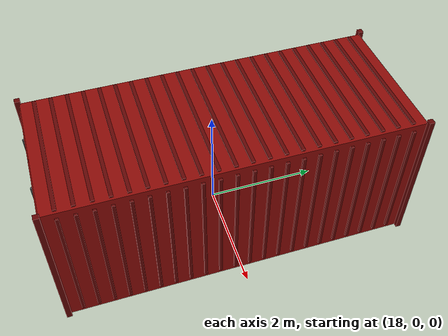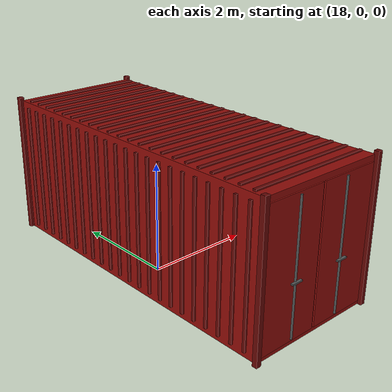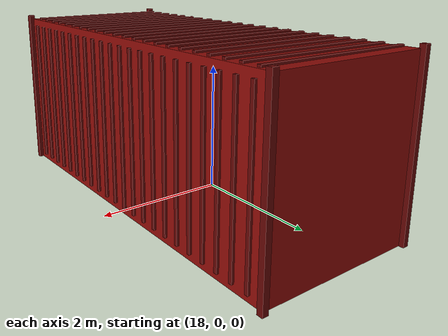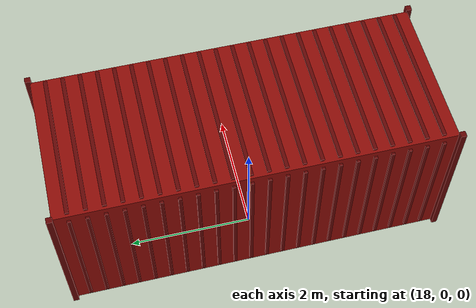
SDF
<sdf version="1.5">
 <world name="default">
  <include><uri>model://sun</uri></include>
  <model name="red_shipping_container">
   <static>true</static>
   <pose>18.5 0 0.003 0 0 1.570796</pose>
   <link name="structure">
    <visual name="body">
     <pose>0 0 1.2955 0 0 0</pose>
     <geometry><box><size>6.058 2.438 2.591</size></box></geometry>
     <material>
      <ambient>0.56 0.045 0.028 1</ambient>
      <diffuse>0.56 0.045 0.028 1</diffuse>
      <specular>0.04 0.04 0.04 1</specular>
     </material>
    </visual>
    <collision name="body_collision">
     <pose>0 0 1.2955 0 0 0</pose>
     <geometry><box><size>6.058 2.438 2.591</size></box></geometry>
     <surface><friction><ode><mu>1.0</mu><mu2>1.0</mu2></ode></friction></surface>
    </collision>
    <visual name="wall_rib_0_-1">
     <pose>-2.8 -1.237 1.2955 0 0 0</pose>
     <geometry><box><size>0.055 0.038 2.39</size></box></geometry>
     <material>
      <ambient>0.39 0.025 0.018 1</ambient>
      <diffuse>0.39 0.025 0.018 1</diffuse>
      <specular>0.04 0.04 0.04 1</specular>
     </material>
    </visual>
    <visual name="wall_rib_0_1">
     <pose>-2.8 1.237 1.2955 0 0 0</pose>
     <geometry><box><size>0.055 0.038 2.39</size></box></geometry>
     <material>
      <ambient>0.39 0.025 0.018 1</ambient>
      <diffuse>0.39 0.025 0.018 1</diffuse>
      <specular>0.04 0.04 0.04 1</specular>
     </material>
    </visual>
    <visual name="roof_rib_0">
     <pose>-2.8 0 2.606 0 0 0</pose>
     <geometry><box><size>0.06 2.35 0.03</size></box></geometry>
     <material>
      <ambient>0.39 0.025 0.018 1</ambient>
      <diffuse>0.39 0.025 0.018 1</diffuse>
      <specular>0.04 0.04 0.04 1</specular>
     </material>
    </visual>
    <visual name="wall_rib_1_-1">
     <pose>-2.533333 -1.237 1.2955 0 0 0</pose>
     <geometry><box><size>0.055 0.038 2.39</size></box></geometry>
     <material>
      <ambient>0.39 0.025 0.018 1</ambient>
      <diffuse>0.39 0.025 0.018 1</diffuse>
      <specular>0.04 0.04 0.04 1</specular>
     </material>
    </visual>
    <visual name="wall_rib_1_1">
     <pose>-2.533333 1.237 1.2955 0 0 0</pose>
     <geometry><box><size>0.055 0.038 2.39</size></box></geometry>
     <material>
      <ambient>0.39 0.025 0.018 1</ambient>
      <diffuse>0.39 0.025 0.018 1</diffuse>
      <specular>0.04 0.04 0.04 1</specular>
     </material>
    </visual>
    <visual name="roof_rib_1">
     <pose>-2.533333 0 2.606 0 0 0</pose>
     <geometry><box><size>0.06 2.35 0.03</size></box></geometry>
     <material>
      <ambient>0.39 0.025 0.018 1</ambient>
      <diffuse>0.39 0.025 0.018 1</diffuse>
      <specular>0.04 0.04 0.04 1</specular>
     </material>
    </visual>
    <visual name="wall_rib_2_-1">
     <pose>-2.266667 -1.237 1.2955 0 0 0</pose>
     <geometry><box><size>0.055 0.038 2.39</size></box></geometry>
     <material>
      <ambient>0.39 0.025 0.018 1</ambient>
      <diffuse>0.39 0.025 0.018 1</diffuse>
      <specular>0.04 0.04 0.04 1</specular>
     </material>
    </visual>
    <visual name="wall_rib_2_1">
     <pose>-2.266667 1.237 1.2955 0 0 0</pose>
     <geometry><box><size>0.055 0.038 2.39</size></box></geometry>
     <material>
      <ambient>0.39 0.025 0.018 1</ambient>
      <diffuse>0.39 0.025 0.018 1</diffuse>
      <specular>0.04 0.04 0.04 1</specular>
     </material>
    </visual>
    <visual name="roof_rib_2">
     <pose>-2.266667 0 2.606 0 0 0</pose>
     <geometry><box><size>0.06 2.35 0.03</size></box></geometry>
     <material>
      <ambient>0.39 0.025 0.018 1</ambient>
      <diffuse>0.39 0.025 0.018 1</diffuse>
      <specular>0.04 0.04 0.04 1</specular>
     </material>
    </visual>
    <visual name="wall_rib_3_-1">
     <pose>-2 -1.237 1.2955 0 0 0</pose>
     <geometry><box><size>0.055 0.038 2.39</size></box></geometry>
     <material>
      <ambient>0.39 0.025 0.018 1</ambient>
      <diffuse>0.39 0.025 0.018 1</diffuse>
      <specular>0.04 0.04 0.04 1</specular>
     </material>
    </visual>
    <visual name="wall_rib_3_1">
     <pose>-2 1.237 1.2955 0 0 0</pose>
     <geometry><box><size>0.055 0.038 2.39</size></box></geometry>
     <material>
      <ambient>0.39 0.025 0.018 1</ambient>
      <diffuse>0.39 0.025 0.018 1</diffuse>
      <specular>0.04 0.04 0.04 1</specular>
     </material>
    </visual>
    <visual name="roof_rib_3">
     <pose>-2 0 2.606 0 0 0</pose>
     <geometry><box><size>0.06 2.35 0.03</size></box></geometry>
     <material>
      <ambient>0.39 0.025 0.018 1</ambient>
      <diffuse>0.39 0.025 0.018 1</diffuse>
      <specular>0.04 0.04 0.04 1</specular>
     </material>
    </visual>
    <visual name="wall_rib_4_-1">
     <pose>-1.733333 -1.237 1.2955 0 0 0</pose>
     <geometry><box><size>0.055 0.038 2.39</size></box></geometry>
     <material>
      <ambient>0.39 0.025 0.018 1</ambient>
      <diffuse>0.39 0.025 0.018 1</diffuse>
      <specular>0.04 0.04 0.04 1</specular>
     </material>
    </visual>
    <visual name="wall_rib_4_1">
     <pose>-1.733333 1.237 1.2955 0 0 0</pose>
     <geometry><box><size>0.055 0.038 2.39</size></box></geometry>
     <material>
      <ambient>0.39 0.025 0.018 1</ambient>
      <diffuse>0.39 0.025 0.018 1</diffuse>
      <specular>0.04 0.04 0.04 1</specular>
     </material>
    </visual>
    <visual name="roof_rib_4">
     <pose>-1.733333 0 2.606 0 0 0</pose>
     <geometry><box><size>0.06 2.35 0.03</size></box></geometry>
     <material>
      <ambient>0.39 0.025 0.018 1</ambient>
      <diffuse>0.39 0.025 0.018 1</diffuse>
      <specular>0.04 0.04 0.04 1</specular>
     </material>
    </visual>
    <visual name="wall_rib_5_-1">
     <pose>-1.466667 -1.237 1.2955 0 0 0</pose>
     <geometry><box><size>0.055 0.038 2.39</size></box></geometry>
     <material>
      <ambient>0.39 0.025 0.018 1</ambient>
      <diffuse>0.39 0.025 0.018 1</diffuse>
      <specular>0.04 0.04 0.04 1</specular>
     </material>
    </visual>
    <visual name="wall_rib_5_1">
     <pose>-1.466667 1.237 1.2955 0 0 0</pose>
     <geometry><box><size>0.055 0.038 2.39</size></box></geometry>
     <material>
      <ambient>0.39 0.025 0.018 1</ambient>
      <diffuse>0.39 0.025 0.018 1</diffuse>
      <specular>0.04 0.04 0.04 1</specular>
     </material>
    </visual>
    <visual name="roof_rib_5">
     <pose>-1.466667 0 2.606 0 0 0</pose>
     <geometry><box><size>0.06 2.35 0.03</size></box></geometry>
     <material>
      <ambient>0.39 0.025 0.018 1</ambient>
      <diffuse>0.39 0.025 0.018 1</diffuse>
      <specular>0.04 0.04 0.04 1</specular>
     </material>
    </visual>
    <visual name="wall_rib_6_-1">
     <pose>-1.2 -1.237 1.2955 0 0 0</pose>
     <geometry><box><size>0.055 0.038 2.39</size></box></geometry>
     <material>
      <ambient>0.39 0.025 0.018 1</ambient>
      <diffuse>0.39 0.025 0.018 1</diffuse>
      <specular>0.04 0.04 0.04 1</specular>
     </material>
    </visual>
    <visual name="wall_rib_6_1">
     <pose>-1.2 1.237 1.2955 0 0 0</pose>
     <geometry><box><size>0.055 0.038 2.39</size></box></geometry>
     <material>
      <ambient>0.39 0.025 0.018 1</ambient>
      <diffuse>0.39 0.025 0.018 1</diffuse>
      <specular>0.04 0.04 0.04 1</specular>
     </material>
    </visual>
    <visual name="roof_rib_6">
     <pose>-1.2 0 2.606 0 0 0</pose>
     <geometry><box><size>0.06 2.35 0.03</size></box></geometry>
     <material>
      <ambient>0.39 0.025 0.018 1</ambient>
      <diffuse>0.39 0.025 0.018 1</diffuse>
      <specular>0.04 0.04 0.04 1</specular>
     </material>
    </visual>
    <visual name="wall_rib_7_-1">
     <pose>-0.9333333 -1.237 1.2955 0 0 0</pose>
     <geometry><box><size>0.055 0.038 2.39</size></box></geometry>
     <material>
      <ambient>0.39 0.025 0.018 1</ambient>
      <diffuse>0.39 0.025 0.018 1</diffuse>
      <specular>0.04 0.04 0.04 1</specular>
     </material>
    </visual>
    <visual name="wall_rib_7_1">
     <pose>-0.9333333 1.237 1.2955 0 0 0</pose>
     <geometry><box><size>0.055 0.038 2.39</size></box></geometry>
     <material>
      <ambient>0.39 0.025 0.018 1</ambient>
      <diffuse>0.39 0.025 0.018 1</diffuse>
      <specular>0.04 0.04 0.04 1</specular>
     </material>
    </visual>
    <visual name="roof_rib_7">
     <pose>-0.9333333 0 2.606 0 0 0</pose>
     <geometry><box><size>0.06 2.35 0.03</size></box></geometry>
     <material>
      <ambient>0.39 0.025 0.018 1</ambient>
      <diffuse>0.39 0.025 0.018 1</diffuse>
      <specular>0.04 0.04 0.04 1</specular>
     </material>
    </visual>
    <visual name="wall_rib_8_-1">
     <pose>-0.6666667 -1.237 1.2955 0 0 0</pose>
     <geometry><box><size>0.055 0.038 2.39</size></box></geometry>
     <material>
      <ambient>0.39 0.025 0.018 1</ambient>
      <diffuse>0.39 0.025 0.018 1</diffuse>
      <specular>0.04 0.04 0.04 1</specular>
     </material>
    </visual>
    <visual name="wall_rib_8_1">
     <pose>-0.6666667 1.237 1.2955 0 0 0</pose>
     <geometry><box><size>0.055 0.038 2.39</size></box></geometry>
     <material>
      <ambient>0.39 0.025 0.018 1</ambient>
      <diffuse>0.39 0.025 0.018 1</diffuse>
      <specular>0.04 0.04 0.04 1</specular>
     </material>
    </visual>
    <visual name="roof_rib_8">
     <pose>-0.6666667 0 2.606 0 0 0</pose>
     <geometry><box><size>0.06 2.35 0.03</size></box></geometry>
     <material>
      <ambient>0.39 0.025 0.018 1</ambient>
      <diffuse>0.39 0.025 0.018 1</diffuse>
      <specular>0.04 0.04 0.04 1</specular>
     </material>
    </visual>
    <visual name="wall_rib_9_-1">
     <pose>-0.4 -1.237 1.2955 0 0 0</pose>
     <geometry><box><size>0.055 0.038 2.39</size></box></geometry>
     <material>
      <ambient>0.39 0.025 0.018 1</ambient>
      <diffuse>0.39 0.025 0.018 1</diffuse>
      <specular>0.04 0.04 0.04 1</specular>
     </material>
    </visual>
    <visual name="wall_rib_9_1">
     <pose>-0.4 1.237 1.2955 0 0 0</pose>
     <geometry><box><size>0.055 0.038 2.39</size></box></geometry>
     <material>
      <ambient>0.39 0.025 0.018 1</ambient>
      <diffuse>0.39 0.025 0.018 1</diffuse>
      <specular>0.04 0.04 0.04 1</specular>
     </material>
    </visual>
    <visual name="roof_rib_9">
     <pose>-0.4 0 2.606 0 0 0</pose>
     <geometry><box><size>0.06 2.35 0.03</size></box></geometry>
     <material>
      <ambient>0.39 0.025 0.018 1</ambient>
      <diffuse>0.39 0.025 0.018 1</diffuse>
      <specular>0.04 0.04 0.04 1</specular>
     </material>
    </visual>
    <visual name="wall_rib_10_-1">
     <pose>-0.1333333 -1.237 1.2955 0 0 0</pose>
     <geometry><box><size>0.055 0.038 2.39</size></box></geometry>
     <material>
      <ambient>0.39 0.025 0.018 1</ambient>
      <diffuse>0.39 0.025 0.018 1</diffuse>
      <specular>0.04 0.04 0.04 1</specular>
     </material>
    </visual>
    <visual name="wall_rib_10_1">
     <pose>-0.1333333 1.237 1.2955 0 0 0</pose>
     <geometry><box><size>0.055 0.038 2.39</size></box></geometry>
     <material>
      <ambient>0.39 0.025 0.018 1</ambient>
      <diffuse>0.39 0.025 0.018 1</diffuse>
      <specular>0.04 0.04 0.04 1</specular>
     </material>
    </visual>
    <visual name="roof_rib_10">
     <pose>-0.1333333 0 2.606 0 0 0</pose>
     <geometry><box><size>0.06 2.35 0.03</size></box></geometry>
     <material>
      <ambient>0.39 0.025 0.018 1</ambient>
      <diffuse>0.39 0.025 0.018 1</diffuse>
      <specular>0.04 0.04 0.04 1</specular>
     </material>
    </visual>
    <visual name="wall_rib_11_-1">
     <pose>0.1333333 -1.237 1.2955 0 0 0</pose>
     <geometry><box><size>0.055 0.038 2.39</size></box></geometry>
     <material>
      <ambient>0.39 0.025 0.018 1</ambient>
      <diffuse>0.39 0.025 0.018 1</diffuse>
      <specular>0.04 0.04 0.04 1</specular>
     </material>
    </visual>
    <visual name="wall_rib_11_1">
     <pose>0.1333333 1.237 1.2955 0 0 0</pose>
     <geometry><box><size>0.055 0.038 2.39</size></box></geometry>
     <material>
      <ambient>0.39 0.025 0.018 1</ambient>
      <diffuse>0.39 0.025 0.018 1</diffuse>
      <specular>0.04 0.04 0.04 1</specular>
     </material>
    </visual>
    <visual name="roof_rib_11">
     <pose>0.1333333 0 2.606 0 0 0</pose>
     <geometry><box><size>0.06 2.35 0.03</size></box></geometry>
     <material>
      <ambient>0.39 0.025 0.018 1</ambient>
      <diffuse>0.39 0.025 0.018 1</diffuse>
      <specular>0.04 0.04 0.04 1</specular>
     </material>
    </visual>
    <visual name="wall_rib_12_-1">
     <pose>0.4 -1.237 1.2955 0 0 0</pose>
     <geometry><box><size>0.055 0.038 2.39</size></box></geometry>
     <material>
      <ambient>0.39 0.025 0.018 1</ambient>
      <diffuse>0.39 0.025 0.018 1</diffuse>
      <specular>0.04 0.04 0.04 1</specular>
     </material>
    </visual>
    <visual name="wall_rib_12_1">
     <pose>0.4 1.237 1.2955 0 0 0</pose>
     <geometry><box><size>0.055 0.038 2.39</size></box></geometry>
     <material>
      <ambient>0.39 0.025 0.018 1</ambient>
      <diffuse>0.39 0.025 0.018 1</diffuse>
      <specular>0.04 0.04 0.04 1</specular>
     </material>
    </visual>
    <visual name="roof_rib_12">
     <pose>0.4 0 2.606 0 0 0</pose>
     <geometry><box><size>0.06 2.35 0.03</size></box></geometry>
     <material>
      <ambient>0.39 0.025 0.018 1</ambient>
      <diffuse>0.39 0.025 0.018 1</diffuse>
      <specular>0.04 0.04 0.04 1</specular>
     </material>
    </visual>
    <visual name="wall_rib_13_-1">
     <pose>0.6666667 -1.237 1.2955 0 0 0</pose>
     <geometry><box><size>0.055 0.038 2.39</size></box></geometry>
     <material>
      <ambient>0.39 0.025 0.018 1</ambient>
      <diffuse>0.39 0.025 0.018 1</diffuse>
      <specular>0.04 0.04 0.04 1</specular>
     </material>
    </visual>
    <visual name="wall_rib_13_1">
     <pose>0.6666667 1.237 1.2955 0 0 0</pose>
     <geometry><box><size>0.055 0.038 2.39</size></box></geometry>
     <material>
      <ambient>0.39 0.025 0.018 1</ambient>
      <diffuse>0.39 0.025 0.018 1</diffuse>
      <specular>0.04 0.04 0.04 1</specular>
     </material>
    </visual>
    <visual name="roof_rib_13">
     <pose>0.6666667 0 2.606 0 0 0</pose>
     <geometry><box><size>0.06 2.35 0.03</size></box></geometry>
     <material>
      <ambient>0.39 0.025 0.018 1</ambient>
      <diffuse>0.39 0.025 0.018 1</diffuse>
      <specular>0.04 0.04 0.04 1</specular>
     </material>
    </visual>
    <visual name="wall_rib_14_-1">
     <pose>0.9333333 -1.237 1.2955 0 0 0</pose>
     <geometry><box><size>0.055 0.038 2.39</size></box></geometry>
     <material>
      <ambient>0.39 0.025 0.018 1</ambient>
      <diffuse>0.39 0.025 0.018 1</diffuse>
      <specular>0.04 0.04 0.04 1</specular>
     </material>
    </visual>
    <visual name="wall_rib_14_1">
     <pose>0.9333333 1.237 1.2955 0 0 0</pose>
     <geometry><box><size>0.055 0.038 2.39</size></box></geometry>
     <material>
      <ambient>0.39 0.025 0.018 1</ambient>
      <diffuse>0.39 0.025 0.018 1</diffuse>
      <specular>0.04 0.04 0.04 1</specular>
     </material>
    </visual>
    <visual name="roof_rib_14">
     <pose>0.9333333 0 2.606 0 0 0</pose>
     <geometry><box><size>0.06 2.35 0.03</size></box></geometry>
     <material>
      <ambient>0.39 0.025 0.018 1</ambient>
      <diffuse>0.39 0.025 0.018 1</diffuse>
      <specular>0.04 0.04 0.04 1</specular>
     </material>
    </visual>
    <visual name="wall_rib_15_-1">
     <pose>1.2 -1.237 1.2955 0 0 0</pose>
     <geometry><box><size>0.055 0.038 2.39</size></box></geometry>
     <material>
      <ambient>0.39 0.025 0.018 1</ambient>
      <diffuse>0.39 0.025 0.018 1</diffuse>
      <specular>0.04 0.04 0.04 1</specular>
     </material>
    </visual>
    <visual name="wall_rib_15_1">
     <pose>1.2 1.237 1.2955 0 0 0</pose>
     <geometry><box><size>0.055 0.038 2.39</size></box></geometry>
     <material>
      <ambient>0.39 0.025 0.018 1</ambient>
      <diffuse>0.39 0.025 0.018 1</diffuse>
      <specular>0.04 0.04 0.04 1</specular>
     </material>
    </visual>
    <visual name="roof_rib_15">
     <pose>1.2 0 2.606 0 0 0</pose>
     <geometry><box><size>0.06 2.35 0.03</size></box></geometry>
     <material>
      <ambient>0.39 0.025 0.018 1</ambient>
      <diffuse>0.39 0.025 0.018 1</diffuse>
      <specular>0.04 0.04 0.04 1</specular>
     </material>
    </visual>
    <visual name="wall_rib_16_-1">
     <pose>1.466667 -1.237 1.2955 0 0 0</pose>
     <geometry><box><size>0.055 0.038 2.39</size></box></geometry>
     <material>
      <ambient>0.39 0.025 0.018 1</ambient>
      <diffuse>0.39 0.025 0.018 1</diffuse>
      <specular>0.04 0.04 0.04 1</specular>
     </material>
    </visual>
    <visual name="wall_rib_16_1">
     <pose>1.466667 1.237 1.2955 0 0 0</pose>
     <geometry><box><size>0.055 0.038 2.39</size></box></geometry>
     <material>
      <ambient>0.39 0.025 0.018 1</ambient>
      <diffuse>0.39 0.025 0.018 1</diffuse>
      <specular>0.04 0.04 0.04 1</specular>
     </material>
    </visual>
    <visual name="roof_rib_16">
     <pose>1.466667 0 2.606 0 0 0</pose>
     <geometry><box><size>0.06 2.35 0.03</size></box></geometry>
     <material>
      <ambient>0.39 0.025 0.018 1</ambient>
      <diffuse>0.39 0.025 0.018 1</diffuse>
      <specular>0.04 0.04 0.04 1</specular>
     </material>
    </visual>
    <visual name="wall_rib_17_-1">
     <pose>1.733333 -1.237 1.2955 0 0 0</pose>
     <geometry><box><size>0.055 0.038 2.39</size></box></geometry>
     <material>
      <ambient>0.39 0.025 0.018 1</ambient>
      <diffuse>0.39 0.025 0.018 1</diffuse>
      <specular>0.04 0.04 0.04 1</specular>
     </material>
    </visual>
    <visual name="wall_rib_17_1">
     <pose>1.733333 1.237 1.2955 0 0 0</pose>
     <geometry><box><size>0.055 0.038 2.39</size></box></geometry>
     <material>
      <ambient>0.39 0.025 0.018 1</ambient>
      <diffuse>0.39 0.025 0.018 1</diffuse>
      <specular>0.04 0.04 0.04 1</specular>
     </material>
    </visual>
    <visual name="roof_rib_17">
     <pose>1.733333 0 2.606 0 0 0</pose>
     <geometry><box><size>0.06 2.35 0.03</size></box></geometry>
     <material>
      <ambient>0.39 0.025 0.018 1</ambient>
      <diffuse>0.39 0.025 0.018 1</diffuse>
      <specular>0.04 0.04 0.04 1</specular>
     </material>
    </visual>
    <visual name="wall_rib_18_-1">
     <pose>2 -1.237 1.2955 0 0 0</pose>
     <geometry><box><size>0.055 0.038 2.39</size></box></geometry>
     <material>
      <ambient>0.39 0.025 0.018 1</ambient>
      <diffuse>0.39 0.025 0.018 1</diffuse>
      <specular>0.04 0.04 0.04 1</specular>
     </material>
    </visual>
    <visual name="wall_rib_18_1">
     <pose>2 1.237 1.2955 0 0 0</pose>
     <geometry><box><size>0.055 0.038 2.39</size></box></geometry>
     <material>
      <ambient>0.39 0.025 0.018 1</ambient>
      <diffuse>0.39 0.025 0.018 1</diffuse>
      <specular>0.04 0.04 0.04 1</specular>
     </material>
    </visual>
    <visual name="roof_rib_18">
     <pose>2 0 2.606 0 0 0</pose>
     <geometry><box><size>0.06 2.35 0.03</size></box></geometry>
     <material>
      <ambient>0.39 0.025 0.018 1</ambient>
      <diffuse>0.39 0.025 0.018 1</diffuse>
      <specular>0.04 0.04 0.04 1</specular>
     </material>
    </visual>
    <visual name="wall_rib_19_-1">
     <pose>2.266667 -1.237 1.2955 0 0 0</pose>
     <geometry><box><size>0.055 0.038 2.39</size></box></geometry>
     <material>
      <ambient>0.39 0.025 0.018 1</ambient>
      <diffuse>0.39 0.025 0.018 1</diffuse>
      <specular>0.04 0.04 0.04 1</specular>
     </material>
    </visual>
    <visual name="wall_rib_19_1">
     <pose>2.266667 1.237 1.2955 0 0 0</pose>
     <geometry><box><size>0.055 0.038 2.39</size></box></geometry>
     <material>
      <ambient>0.39 0.025 0.018 1</ambient>
      <diffuse>0.39 0.025 0.018 1</diffuse>
      <specular>0.04 0.04 0.04 1</specular>
     </material>
    </visual>
    <visual name="roof_rib_19">
     <pose>2.266667 0 2.606 0 0 0</pose>
     <geometry><box><size>0.06 2.35 0.03</size></box></geometry>
     <material>
      <ambient>0.39 0.025 0.018 1</ambient>
      <diffuse>0.39 0.025 0.018 1</diffuse>
      <specular>0.04 0.04 0.04 1</specular>
     </material>
    </visual>
    <visual name="wall_rib_20_-1">
     <pose>2.533333 -1.237 1.2955 0 0 0</pose>
     <geometry><box><size>0.055 0.038 2.39</size></box></geometry>
     <material>
      <ambient>0.39 0.025 0.018 1</ambient>
      <diffuse>0.39 0.025 0.018 1</diffuse>
      <specular>0.04 0.04 0.04 1</specular>
     </material>
    </visual>
    <visual name="wall_rib_20_1">
     <pose>2.533333 1.237 1.2955 0 0 0</pose>
     <geometry><box><size>0.055 0.038 2.39</size></box></geometry>
     <material>
      <ambient>0.39 0.025 0.018 1</ambient>
      <diffuse>0.39 0.025 0.018 1</diffuse>
      <specular>0.04 0.04 0.04 1</specular>
     </material>
    </visual>
    <visual name="roof_rib_20">
     <pose>2.533333 0 2.606 0 0 0</pose>
     <geometry><box><size>0.06 2.35 0.03</size></box></geometry>
     <material>
      <ambient>0.39 0.025 0.018 1</ambient>
      <diffuse>0.39 0.025 0.018 1</diffuse>
      <specular>0.04 0.04 0.04 1</specular>
     </material>
    </visual>
    <visual name="wall_rib_21_-1">
     <pose>2.8 -1.237 1.2955 0 0 0</pose>
     <geometry><box><size>0.055 0.038 2.39</size></box></geometry>
     <material>
      <ambient>0.39 0.025 0.018 1</ambient>
      <diffuse>0.39 0.025 0.018 1</diffuse>
      <specular>0.04 0.04 0.04 1</specular>
     </material>
    </visual>
    <visual name="wall_rib_21_1">
     <pose>2.8 1.237 1.2955 0 0 0</pose>
     <geometry><box><size>0.055 0.038 2.39</size></box></geometry>
     <material>
      <ambient>0.39 0.025 0.018 1</ambient>
      <diffuse>0.39 0.025 0.018 1</diffuse>
      <specular>0.04 0.04 0.04 1</specular>
     </material>
    </visual>
    <visual name="roof_rib_21">
     <pose>2.8 0 2.606 0 0 0</pose>
     <geometry><box><size>0.06 2.35 0.03</size></box></geometry>
     <material>
      <ambient>0.39 0.025 0.018 1</ambient>
      <diffuse>0.39 0.025 0.018 1</diffuse>
      <specular>0.04 0.04 0.04 1</specular>
     </material>
    </visual>
    <visual name="corner_-3.055_-1.245">
     <pose>-3.055 -1.245 1.325 0 0 0</pose>
     <geometry><box><size>0.09 0.09 2.65</size></box></geometry>
     <material>
      <ambient>0.39 0.025 0.018 1</ambient>
      <diffuse>0.39 0.025 0.018 1</diffuse>
      <specular>0.04 0.04 0.04 1</specular>
     </material>
    </visual>
    <visual name="corner_-3.055_1.245">
     <pose>-3.055 1.245 1.325 0 0 0</pose>
     <geometry><box><size>0.09 0.09 2.65</size></box></geometry>
     <material>
      <ambient>0.39 0.025 0.018 1</ambient>
      <diffuse>0.39 0.025 0.018 1</diffuse>
      <specular>0.04 0.04 0.04 1</specular>
     </material>
    </visual>
    <visual name="corner_3.055_-1.245">
     <pose>3.055 -1.245 1.325 0 0 0</pose>
     <geometry><box><size>0.09 0.09 2.65</size></box></geometry>
     <material>
      <ambient>0.39 0.025 0.018 1</ambient>
      <diffuse>0.39 0.025 0.018 1</diffuse>
      <specular>0.04 0.04 0.04 1</specular>
     </material>
    </visual>
    <visual name="corner_3.055_1.245">
     <pose>3.055 1.245 1.325 0 0 0</pose>
     <geometry><box><size>0.09 0.09 2.65</size></box></geometry>
     <material>
      <ambient>0.39 0.025 0.018 1</ambient>
      <diffuse>0.39 0.025 0.018 1</diffuse>
      <specular>0.04 0.04 0.04 1</specular>
     </material>
    </visual>
    <visual name="end_door_-1">
     <pose>-3.043 -0.593 1.29 0 0 0</pose>
     <geometry><box><size>0.025 1.14 2.4</size></box></geometry>
     <material>
      <ambient>0.56 0.045 0.028 1</ambient>
      <diffuse>0.56 0.045 0.028 1</diffuse>
      <specular>0.04 0.04 0.04 1</specular>
     </material>
    </visual>
    <visual name="lock_bar_-1">
     <pose>-3.07 -0.52 1.29 0 0 0</pose>
     <geometry><cylinder><radius>0.018</radius><length>2.32</length></cylinder></geometry>
     <material>
      <ambient>0.34 0.35 0.35 1</ambient>
      <diffuse>0.34 0.35 0.35 1</diffuse>
      <specular>0.04 0.04 0.04 1</specular>
     </material>
    </visual>
    <visual name="lock_handle_-1">
     <pose>-3.095 -0.52 1.1 0 0 0</pose>
     <geometry><box><size>0.045 0.21 0.025</size></box></geometry>
     <material>
      <ambient>0.34 0.35 0.35 1</ambient>
      <diffuse>0.34 0.35 0.35 1</diffuse>
      <specular>0.04 0.04 0.04 1</specular>
     </material>
    </visual>
    <visual name="end_door_1">
     <pose>-3.043 0.593 1.29 0 0 0</pose>
     <geometry><box><size>0.025 1.14 2.4</size></box></geometry>
     <material>
      <ambient>0.56 0.045 0.028 1</ambient>
      <diffuse>0.56 0.045 0.028 1</diffuse>
      <specular>0.04 0.04 0.04 1</specular>
     </material>
    </visual>
    <visual name="lock_bar_1">
     <pose>-3.07 0.52 1.29 0 0 0</pose>
     <geometry><cylinder><radius>0.018</radius><length>2.32</length></cylinder></geometry>
     <material>
      <ambient>0.34 0.35 0.35 1</ambient>
      <diffuse>0.34 0.35 0.35 1</diffuse>
      <specular>0.04 0.04 0.04 1</specular>
     </material>
    </visual>
    <visual name="lock_handle_1">
     <pose>-3.095 0.52 1.1 0 0 0</pose>
     <geometry><box><size>0.045 0.21 0.025</size></box></geometry>
     <material>
      <ambient>0.34 0.35 0.35 1</ambient>
      <diffuse>0.34 0.35 0.35 1</diffuse>
      <specular>0.04 0.04 0.04 1</specular>
     </material>
    </visual>
   </link>
  </model>
 </world>
</sdf>
